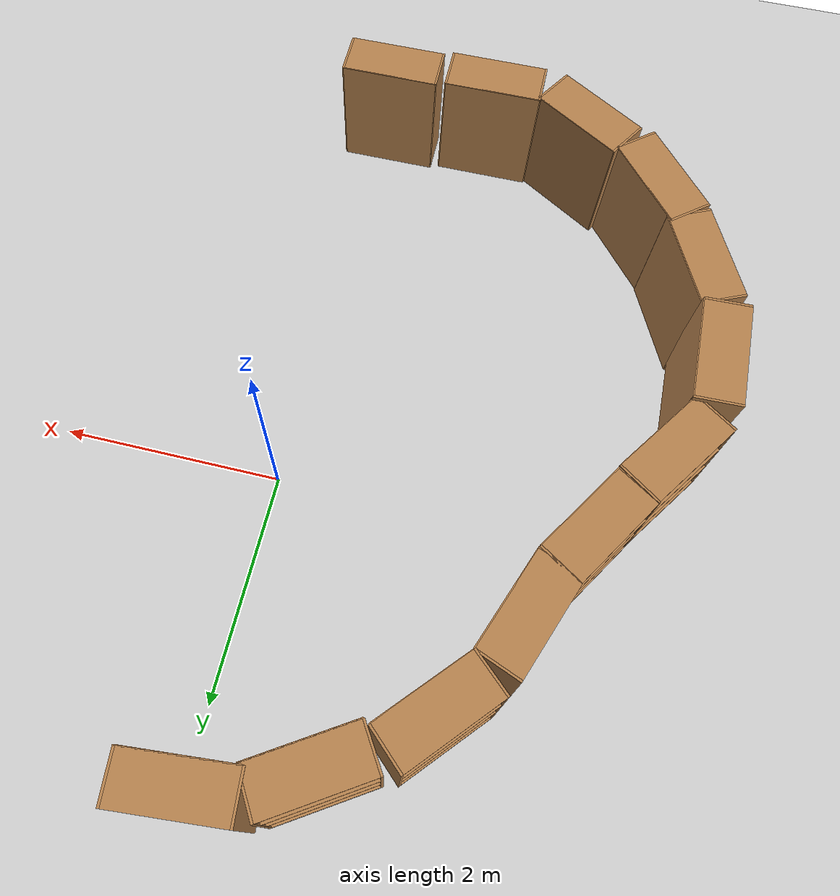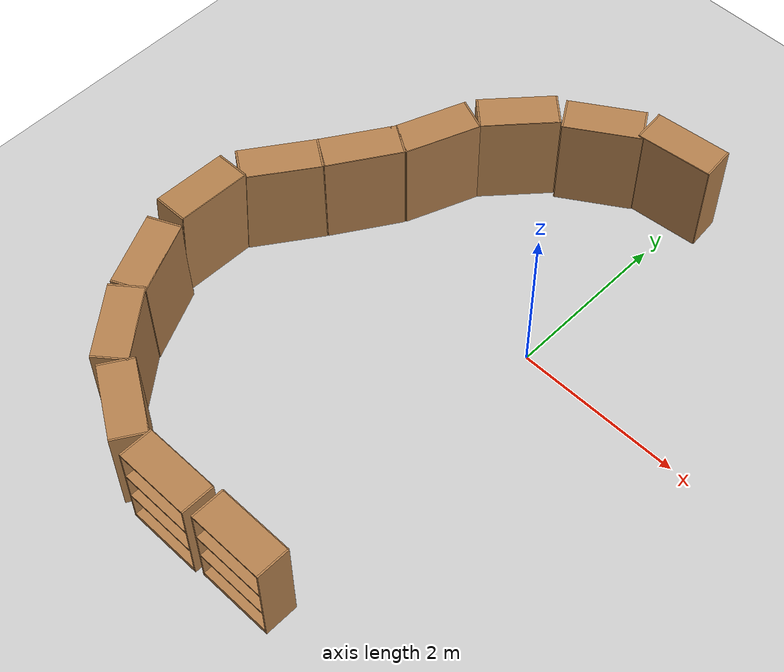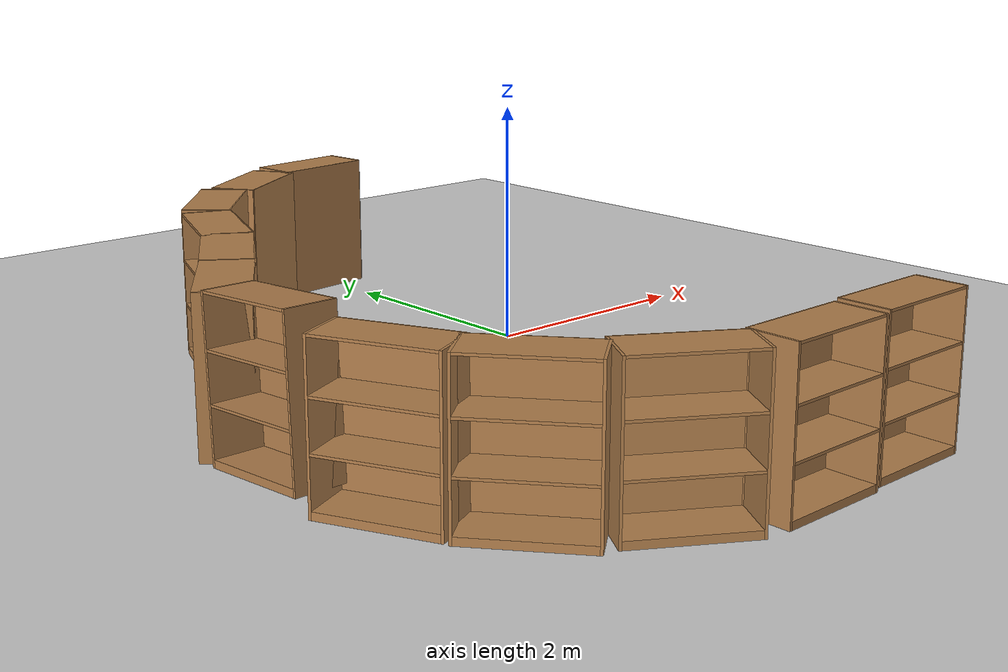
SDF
<sdf version="1.7">
 <world name="default">
  <model name="ground_plane">
   <static>1</static>
   <link name="link">
    <collision name="collision">
     <geometry><plane><normal>0 0 1</normal><size>100 100</size></plane></geometry>
     <surface>
      <contact><collide_bitmask>65535</collide_bitmask></contact>
      <friction><ode><mu>100</mu><mu2>50</mu2></ode></friction>
     </surface>
    </collision>
    <visual name="visual">
     <cast_shadows>0</cast_shadows>
     <geometry><plane><normal>0 0 1</normal><size>100 100</size></plane></geometry>
     <material>
      <script><uri>file://media/materials/scripts/gazebo.material</uri><name>Gazebo/Grey</name></script>
     </material>
    </visual>
   </link>
  </model>
  <model name="bookshelf">
   <static>1</static>
   <link name="link">
    <inertial><mass>1</mass></inertial>
    <collision name="back">
     <pose>0 0.005 0.6 0 -0 0</pose>
     <geometry><box><size>0.9 0.01 1.2</size></box></geometry>
    </collision>
    <visual name="visual1">
     <pose>0 0.005 0.6 0 -0 0</pose>
     <geometry><box><size>0.9 0.01 1.2</size></box></geometry>
     <material>
      <script><uri>file://media/materials/scripts/gazebo.material</uri><name>Gazebo/Wood</name></script>
     </material>
    </visual>
    <collision name="left_side">
     <pose>0.45 -0.195 0.6 0 -0 0</pose>
     <geometry><box><size>0.02 0.4 1.2</size></box></geometry>
    </collision>
    <visual name="visual2">
     <pose>0.45 -0.195 0.6 0 -0 0</pose>
     <geometry><box><size>0.02 0.4 1.2</size></box></geometry>
     <material>
      <script><uri>file://media/materials/scripts/gazebo.material</uri><name>Gazebo/Wood</name></script>
     </material>
    </visual>
    <collision name="right_side">
     <pose>-0.45 -0.195 0.6 0 -0 0</pose>
     <geometry><box><size>0.02 0.4 1.2</size></box></geometry>
    </collision>
    <visual name="visual3">
     <pose>-0.45 -0.195 0.6 0 -0 0</pose>
     <geometry><box><size>0.02 0.4 1.2</size></box></geometry>
     <material>
      <script><uri>file://media/materials/scripts/gazebo.material</uri><name>Gazebo/Wood</name></script>
     </material>
    </visual>
    <collision name="bottom">
     <pose>0 -0.195 0.03 0 -0 0</pose>
     <geometry><box><size>0.88 0.4 0.06</size></box></geometry>
    </collision>
    <visual name="visual4">
     <pose>0 -0.195 0.03 0 -0 0</pose>
     <geometry><box><size>0.88 0.4 0.06</size></box></geometry>
     <material>
      <script><uri>file://media/materials/scripts/gazebo.material</uri><name>Gazebo/Wood</name></script>
     </material>
    </visual>
    <collision name="top">
     <pose>0 -0.195 1.19 0 -0 0</pose>
     <geometry><box><size>0.88 0.4 0.02</size></box></geometry>
    </collision>
    <visual name="visual5">
     <pose>0 -0.195 1.19 0 -0 0</pose>
     <geometry><box><size>0.88 0.4 0.02</size></box></geometry>
     <material>
      <script><uri>file://media/materials/scripts/gazebo.material</uri><name>Gazebo/Wood</name></script>
     </material>
    </visual>
    <collision name="low_shelf">
     <pose>0 -0.195 0.43 0 -0 0</pose>
     <geometry><box><size>0.88 0.4 0.02</size></box></geometry>
    </collision>
    <visual name="visual6">
     <pose>0 -0.195 0.43 0 -0 0</pose>
     <geometry><box><size>0.88 0.4 0.02</size></box></geometry>
     <material>
      <script><uri>file://media/materials/scripts/gazebo.material</uri><name>Gazebo/Wood</name></script>
     </material>
    </visual>
    <collision name="high_shelf">
     <pose>0 -0.195 0.8 0 -0 0</pose>
     <geometry><box><size>0.88 0.4 0.02</size></box></geometry>
    </collision>
    <visual name="visual7">
     <pose>0 -0.195 0.8 0 -0 0</pose>
     <geometry><box><size>0.88 0.4 0.02</size></box></geometry>
     <material>
      <script><uri>file://media/materials/scripts/gazebo.material</uri><name>Gazebo/Wood</name></script>
     </material>
    </visual>
   </link>
   <pose>-3.24887 -1.54956 0.088565 -0.012294 -0.060689 -1.55302</pose>
  </model>
  <model name="bookshelf_0">
   <static>1</static>
   <link name="link">
    <inertial><mass>1</mass></inertial>
    <collision name="back">
     <pose>0 0.005 0.6 0 -0 0</pose>
     <geometry><box><size>0.9 0.01 1.2</size></box></geometry>
    </collision>
    <visual name="visual1">
     <pose>0 0.005 0.6 0 -0 0</pose>
     <geometry><box><size>0.9 0.01 1.2</size></box></geometry>
     <material>
      <script><uri>file://media/materials/scripts/gazebo.material</uri><name>Gazebo/Wood</name></script>
     </material>
    </visual>
    <collision name="left_side">
     <pose>0.45 -0.195 0.6 0 -0 0</pose>
     <geometry><box><size>0.02 0.4 1.2</size></box></geometry>
    </collision>
    <visual name="visual2">
     <pose>0.45 -0.195 0.6 0 -0 0</pose>
     <geometry><box><size>0.02 0.4 1.2</size></box></geometry>
     <material>
      <script><uri>file://media/materials/scripts/gazebo.material</uri><name>Gazebo/Wood</name></script>
     </material>
    </visual>
    <collision name="right_side">
     <pose>-0.45 -0.195 0.6 0 -0 0</pose>
     <geometry><box><size>0.02 0.4 1.2</size></box></geometry>
    </collision>
    <visual name="visual3">
     <pose>-0.45 -0.195 0.6 0 -0 0</pose>
     <geometry><box><size>0.02 0.4 1.2</size></box></geometry>
     <material>
      <script><uri>file://media/materials/scripts/gazebo.material</uri><name>Gazebo/Wood</name></script>
     </material>
    </visual>
    <collision name="bottom">
     <pose>0 -0.195 0.03 0 -0 0</pose>
     <geometry><box><size>0.88 0.4 0.06</size></box></geometry>
    </collision>
    <visual name="visual4">
     <pose>0 -0.195 0.03 0 -0 0</pose>
     <geometry><box><size>0.88 0.4 0.06</size></box></geometry>
     <material>
      <script><uri>file://media/materials/scripts/gazebo.material</uri><name>Gazebo/Wood</name></script>
     </material>
    </visual>
    <collision name="top">
     <pose>0 -0.195 1.19 0 -0 0</pose>
     <geometry><box><size>0.88 0.4 0.02</size></box></geometry>
    </collision>
    <visual name="visual5">
     <pose>0 -0.195 1.19 0 -0 0</pose>
     <geometry><box><size>0.88 0.4 0.02</size></box></geometry>
     <material>
      <script><uri>file://media/materials/scripts/gazebo.material</uri><name>Gazebo/Wood</name></script>
     </material>
    </visual>
    <collision name="low_shelf">
     <pose>0 -0.195 0.43 0 -0 0</pose>
     <geometry><box><size>0.88 0.4 0.02</size></box></geometry>
    </collision>
    <visual name="visual6">
     <pose>0 -0.195 0.43 0 -0 0</pose>
     <geometry><box><size>0.88 0.4 0.02</size></box></geometry>
     <material>
      <script><uri>file://media/materials/scripts/gazebo.material</uri><name>Gazebo/Wood</name></script>
     </material>
    </visual>
    <collision name="high_shelf">
     <pose>0 -0.195 0.8 0 -0 0</pose>
     <geometry><box><size>0.88 0.4 0.02</size></box></geometry>
    </collision>
    <visual name="visual7">
     <pose>0 -0.195 0.8 0 -0 0</pose>
     <geometry><box><size>0.88 0.4 0.02</size></box></geometry>
     <material>
      <script><uri>file://media/materials/scripts/gazebo.material</uri><name>Gazebo/Wood</name></script>
     </material>
    </visual>
   </link>
   <pose>-2.61978 -3.08808 0 0 0 -0.896017</pose>
  </model>
  <model name="bookshelf_1">
   <static>1</static>
   <link name="link">
    <inertial><mass>1</mass></inertial>
    <collision name="back">
     <pose>0 0.005 0.6 0 -0 0</pose>
     <geometry><box><size>0.9 0.01 1.2</size></box></geometry>
    </collision>
    <visual name="visual1">
     <pose>0 0.005 0.6 0 -0 0</pose>
     <geometry><box><size>0.9 0.01 1.2</size></box></geometry>
     <material>
      <script><uri>file://media/materials/scripts/gazebo.material</uri><name>Gazebo/Wood</name></script>
     </material>
    </visual>
    <collision name="left_side">
     <pose>0.45 -0.195 0.6 0 -0 0</pose>
     <geometry><box><size>0.02 0.4 1.2</size></box></geometry>
    </collision>
    <visual name="visual2">
     <pose>0.45 -0.195 0.6 0 -0 0</pose>
     <geometry><box><size>0.02 0.4 1.2</size></box></geometry>
     <material>
      <script><uri>file://media/materials/scripts/gazebo.material</uri><name>Gazebo/Wood</name></script>
     </material>
    </visual>
    <collision name="right_side">
     <pose>-0.45 -0.195 0.6 0 -0 0</pose>
     <geometry><box><size>0.02 0.4 1.2</size></box></geometry>
    </collision>
    <visual name="visual3">
     <pose>-0.45 -0.195 0.6 0 -0 0</pose>
     <geometry><box><size>0.02 0.4 1.2</size></box></geometry>
     <material>
      <script><uri>file://media/materials/scripts/gazebo.material</uri><name>Gazebo/Wood</name></script>
     </material>
    </visual>
    <collision name="bottom">
     <pose>0 -0.195 0.03 0 -0 0</pose>
     <geometry><box><size>0.88 0.4 0.06</size></box></geometry>
    </collision>
    <visual name="visual4">
     <pose>0 -0.195 0.03 0 -0 0</pose>
     <geometry><box><size>0.88 0.4 0.06</size></box></geometry>
     <material>
      <script><uri>file://media/materials/scripts/gazebo.material</uri><name>Gazebo/Wood</name></script>
     </material>
    </visual>
    <collision name="top">
     <pose>0 -0.195 1.19 0 -0 0</pose>
     <geometry><box><size>0.88 0.4 0.02</size></box></geometry>
    </collision>
    <visual name="visual5">
     <pose>0 -0.195 1.19 0 -0 0</pose>
     <geometry><box><size>0.88 0.4 0.02</size></box></geometry>
     <material>
      <script><uri>file://media/materials/scripts/gazebo.material</uri><name>Gazebo/Wood</name></script>
     </material>
    </visual>
    <collision name="low_shelf">
     <pose>0 -0.195 0.43 0 -0 0</pose>
     <geometry><box><size>0.88 0.4 0.02</size></box></geometry>
    </collision>
    <visual name="visual6">
     <pose>0 -0.195 0.43 0 -0 0</pose>
     <geometry><box><size>0.88 0.4 0.02</size></box></geometry>
     <material>
      <script><uri>file://media/materials/scripts/gazebo.material</uri><name>Gazebo/Wood</name></script>
     </material>
    </visual>
    <collision name="high_shelf">
     <pose>0 -0.195 0.8 0 -0 0</pose>
     <geometry><box><size>0.88 0.4 0.02</size></box></geometry>
    </collision>
    <visual name="visual7">
     <pose>0 -0.195 0.8 0 -0 0</pose>
     <geometry><box><size>0.88 0.4 0.02</size></box></geometry>
     <material>
      <script><uri>file://media/materials/scripts/gazebo.material</uri><name>Gazebo/Wood</name></script>
     </material>
    </visual>
   </link>
   <pose>-1.92809 -3.61462 0 0 0 -0.558272</pose>
  </model>
  <model name="bookshelf_2">
   <static>1</static>
   <link name="link">
    <inertial><mass>1</mass></inertial>
    <collision name="back">
     <pose>0 0.005 0.6 0 -0 0</pose>
     <geometry><box><size>0.9 0.01 1.2</size></box></geometry>
    </collision>
    <visual name="visual1">
     <pose>0 0.005 0.6 0 -0 0</pose>
     <geometry><box><size>0.9 0.01 1.2</size></box></geometry>
     <material>
      <script><uri>file://media/materials/scripts/gazebo.material</uri><name>Gazebo/Wood</name></script>
     </material>
    </visual>
    <collision name="left_side">
     <pose>0.45 -0.195 0.6 0 -0 0</pose>
     <geometry><box><size>0.02 0.4 1.2</size></box></geometry>
    </collision>
    <visual name="visual2">
     <pose>0.45 -0.195 0.6 0 -0 0</pose>
     <geometry><box><size>0.02 0.4 1.2</size></box></geometry>
     <material>
      <script><uri>file://media/materials/scripts/gazebo.material</uri><name>Gazebo/Wood</name></script>
     </material>
    </visual>
    <collision name="right_side">
     <pose>-0.45 -0.195 0.6 0 -0 0</pose>
     <geometry><box><size>0.02 0.4 1.2</size></box></geometry>
    </collision>
    <visual name="visual3">
     <pose>-0.45 -0.195 0.6 0 -0 0</pose>
     <geometry><box><size>0.02 0.4 1.2</size></box></geometry>
     <material>
      <script><uri>file://media/materials/scripts/gazebo.material</uri><name>Gazebo/Wood</name></script>
     </material>
    </visual>
    <collision name="bottom">
     <pose>0 -0.195 0.03 0 -0 0</pose>
     <geometry><box><size>0.88 0.4 0.06</size></box></geometry>
    </collision>
    <visual name="visual4">
     <pose>0 -0.195 0.03 0 -0 0</pose>
     <geometry><box><size>0.88 0.4 0.06</size></box></geometry>
     <material>
      <script><uri>file://media/materials/scripts/gazebo.material</uri><name>Gazebo/Wood</name></script>
     </material>
    </visual>
    <collision name="top">
     <pose>0 -0.195 1.19 0 -0 0</pose>
     <geometry><box><size>0.88 0.4 0.02</size></box></geometry>
    </collision>
    <visual name="visual5">
     <pose>0 -0.195 1.19 0 -0 0</pose>
     <geometry><box><size>0.88 0.4 0.02</size></box></geometry>
     <material>
      <script><uri>file://media/materials/scripts/gazebo.material</uri><name>Gazebo/Wood</name></script>
     </material>
    </visual>
    <collision name="low_shelf">
     <pose>0 -0.195 0.43 0 -0 0</pose>
     <geometry><box><size>0.88 0.4 0.02</size></box></geometry>
    </collision>
    <visual name="visual6">
     <pose>0 -0.195 0.43 0 -0 0</pose>
     <geometry><box><size>0.88 0.4 0.02</size></box></geometry>
     <material>
      <script><uri>file://media/materials/scripts/gazebo.material</uri><name>Gazebo/Wood</name></script>
     </material>
    </visual>
    <collision name="high_shelf">
     <pose>0 -0.195 0.8 0 -0 0</pose>
     <geometry><box><size>0.88 0.4 0.02</size></box></geometry>
    </collision>
    <visual name="visual7">
     <pose>0 -0.195 0.8 0 -0 0</pose>
     <geometry><box><size>0.88 0.4 0.02</size></box></geometry>
     <material>
      <script><uri>file://media/materials/scripts/gazebo.material</uri><name>Gazebo/Wood</name></script>
     </material>
    </visual>
   </link>
   <pose>-1.10045 -3.82042 0 0 -0 0</pose>
  </model>
  <model name="bookshelf_3">
   <static>1</static>
   <link name="link">
    <inertial><mass>1</mass></inertial>
    <collision name="back">
     <pose>0 0.005 0.6 0 -0 0</pose>
     <geometry><box><size>0.9 0.01 1.2</size></box></geometry>
    </collision>
    <visual name="visual1">
     <pose>0 0.005 0.6 0 -0 0</pose>
     <geometry><box><size>0.9 0.01 1.2</size></box></geometry>
     <material>
      <script><uri>file://media/materials/scripts/gazebo.material</uri><name>Gazebo/Wood</name></script>
     </material>
    </visual>
    <collision name="left_side">
     <pose>0.45 -0.195 0.6 0 -0 0</pose>
     <geometry><box><size>0.02 0.4 1.2</size></box></geometry>
    </collision>
    <visual name="visual2">
     <pose>0.45 -0.195 0.6 0 -0 0</pose>
     <geometry><box><size>0.02 0.4 1.2</size></box></geometry>
     <material>
      <script><uri>file://media/materials/scripts/gazebo.material</uri><name>Gazebo/Wood</name></script>
     </material>
    </visual>
    <collision name="right_side">
     <pose>-0.45 -0.195 0.6 0 -0 0</pose>
     <geometry><box><size>0.02 0.4 1.2</size></box></geometry>
    </collision>
    <visual name="visual3">
     <pose>-0.45 -0.195 0.6 0 -0 0</pose>
     <geometry><box><size>0.02 0.4 1.2</size></box></geometry>
     <material>
      <script><uri>file://media/materials/scripts/gazebo.material</uri><name>Gazebo/Wood</name></script>
     </material>
    </visual>
    <collision name="bottom">
     <pose>0 -0.195 0.03 0 -0 0</pose>
     <geometry><box><size>0.88 0.4 0.06</size></box></geometry>
    </collision>
    <visual name="visual4">
     <pose>0 -0.195 0.03 0 -0 0</pose>
     <geometry><box><size>0.88 0.4 0.06</size></box></geometry>
     <material>
      <script><uri>file://media/materials/scripts/gazebo.material</uri><name>Gazebo/Wood</name></script>
     </material>
    </visual>
    <collision name="top">
     <pose>0 -0.195 1.19 0 -0 0</pose>
     <geometry><box><size>0.88 0.4 0.02</size></box></geometry>
    </collision>
    <visual name="visual5">
     <pose>0 -0.195 1.19 0 -0 0</pose>
     <geometry><box><size>0.88 0.4 0.02</size></box></geometry>
     <material>
      <script><uri>file://media/materials/scripts/gazebo.material</uri><name>Gazebo/Wood</name></script>
     </material>
    </visual>
    <collision name="low_shelf">
     <pose>0 -0.195 0.43 0 -0 0</pose>
     <geometry><box><size>0.88 0.4 0.02</size></box></geometry>
    </collision>
    <visual name="visual6">
     <pose>0 -0.195 0.43 0 -0 0</pose>
     <geometry><box><size>0.88 0.4 0.02</size></box></geometry>
     <material>
      <script><uri>file://media/materials/scripts/gazebo.material</uri><name>Gazebo/Wood</name></script>
     </material>
    </visual>
    <collision name="high_shelf">
     <pose>0 -0.195 0.8 0 -0 0</pose>
     <geometry><box><size>0.88 0.4 0.02</size></box></geometry>
    </collision>
    <visual name="visual7">
     <pose>0 -0.195 0.8 0 -0 0</pose>
     <geometry><box><size>0.88 0.4 0.02</size></box></geometry>
     <material>
      <script><uri>file://media/materials/scripts/gazebo.material</uri><name>Gazebo/Wood</name></script>
     </material>
    </visual>
   </link>
   <pose>-0.108426 -3.78195 0 0 -0 0</pose>
  </model>
  <model name="bookshelf_14">
   <static>1</static>
   <link name="link">
    <inertial><mass>1</mass></inertial>
    <collision name="back">
     <pose>0 0.005 0.6 0 -0 0</pose>
     <geometry><box><size>0.9 0.01 1.2</size></box></geometry>
    </collision>
    <visual name="visual1">
     <pose>0 0.005 0.6 0 -0 0</pose>
     <geometry><box><size>0.9 0.01 1.2</size></box></geometry>
     <material>
      <script><uri>file://media/materials/scripts/gazebo.material</uri><name>Gazebo/Wood</name></script>
     </material>
    </visual>
    <collision name="left_side">
     <pose>0.45 -0.195 0.6 0 -0 0</pose>
     <geometry><box><size>0.02 0.4 1.2</size></box></geometry>
    </collision>
    <visual name="visual2">
     <pose>0.45 -0.195 0.6 0 -0 0</pose>
     <geometry><box><size>0.02 0.4 1.2</size></box></geometry>
     <material>
      <script><uri>file://media/materials/scripts/gazebo.material</uri><name>Gazebo/Wood</name></script>
     </material>
    </visual>
    <collision name="right_side">
     <pose>-0.45 -0.195 0.6 0 -0 0</pose>
     <geometry><box><size>0.02 0.4 1.2</size></box></geometry>
    </collision>
    <visual name="visual3">
     <pose>-0.45 -0.195 0.6 0 -0 0</pose>
     <geometry><box><size>0.02 0.4 1.2</size></box></geometry>
     <material>
      <script><uri>file://media/materials/scripts/gazebo.material</uri><name>Gazebo/Wood</name></script>
     </material>
    </visual>
    <collision name="bottom">
     <pose>0 -0.195 0.03 0 -0 0</pose>
     <geometry><box><size>0.88 0.4 0.06</size></box></geometry>
    </collision>
    <visual name="visual4">
     <pose>0 -0.195 0.03 0 -0 0</pose>
     <geometry><box><size>0.88 0.4 0.06</size></box></geometry>
     <material>
      <script><uri>file://media/materials/scripts/gazebo.material</uri><name>Gazebo/Wood</name></script>
     </material>
    </visual>
    <collision name="top">
     <pose>0 -0.195 1.19 0 -0 0</pose>
     <geometry><box><size>0.88 0.4 0.02</size></box></geometry>
    </collision>
    <visual name="visual5">
     <pose>0 -0.195 1.19 0 -0 0</pose>
     <geometry><box><size>0.88 0.4 0.02</size></box></geometry>
     <material>
      <script><uri>file://media/materials/scripts/gazebo.material</uri><name>Gazebo/Wood</name></script>
     </material>
    </visual>
    <collision name="low_shelf">
     <pose>0 -0.195 0.43 0 -0 0</pose>
     <geometry><box><size>0.88 0.4 0.02</size></box></geometry>
    </collision>
    <visual name="visual6">
     <pose>0 -0.195 0.43 0 -0 0</pose>
     <geometry><box><size>0.88 0.4 0.02</size></box></geometry>
     <material>
      <script><uri>file://media/materials/scripts/gazebo.material</uri><name>Gazebo/Wood</name></script>
     </material>
    </visual>
    <collision name="high_shelf">
     <pose>0 -0.195 0.8 0 -0 0</pose>
     <geometry><box><size>0.88 0.4 0.02</size></box></geometry>
    </collision>
    <visual name="visual7">
     <pose>0 -0.195 0.8 0 -0 0</pose>
     <geometry><box><size>0.88 0.4 0.02</size></box></geometry>
     <material>
      <script><uri>file://media/materials/scripts/gazebo.material</uri><name>Gazebo/Wood</name></script>
     </material>
    </visual>
   </link>
   <pose>-3.02397 -0.696625 0.006845 0 0 -2.18123</pose>
  </model>
  <model name="bookshelf_15">
   <static>1</static>
   <link name="link">
    <inertial><mass>1</mass></inertial>
    <collision name="back">
     <pose>0 0.005 0.6 0 -0 0</pose>
     <geometry><box><size>0.9 0.01 1.2</size></box></geometry>
    </collision>
    <visual name="visual1">
     <pose>0 0.005 0.6 0 -0 0</pose>
     <geometry><box><size>0.9 0.01 1.2</size></box></geometry>
     <material>
      <script><uri>file://media/materials/scripts/gazebo.material</uri><name>Gazebo/Wood</name></script>
     </material>
    </visual>
    <collision name="left_side">
     <pose>0.45 -0.195 0.6 0 -0 0</pose>
     <geometry><box><size>0.02 0.4 1.2</size></box></geometry>
    </collision>
    <visual name="visual2">
     <pose>0.45 -0.195 0.6 0 -0 0</pose>
     <geometry><box><size>0.02 0.4 1.2</size></box></geometry>
     <material>
      <script><uri>file://media/materials/scripts/gazebo.material</uri><name>Gazebo/Wood</name></script>
     </material>
    </visual>
    <collision name="right_side">
     <pose>-0.45 -0.195 0.6 0 -0 0</pose>
     <geometry><box><size>0.02 0.4 1.2</size></box></geometry>
    </collision>
    <visual name="visual3">
     <pose>-0.45 -0.195 0.6 0 -0 0</pose>
     <geometry><box><size>0.02 0.4 1.2</size></box></geometry>
     <material>
      <script><uri>file://media/materials/scripts/gazebo.material</uri><name>Gazebo/Wood</name></script>
     </material>
    </visual>
    <collision name="bottom">
     <pose>0 -0.195 0.03 0 -0 0</pose>
     <geometry><box><size>0.88 0.4 0.06</size></box></geometry>
    </collision>
    <visual name="visual4">
     <pose>0 -0.195 0.03 0 -0 0</pose>
     <geometry><box><size>0.88 0.4 0.06</size></box></geometry>
     <material>
      <script><uri>file://media/materials/scripts/gazebo.material</uri><name>Gazebo/Wood</name></script>
     </material>
    </visual>
    <collision name="top">
     <pose>0 -0.195 1.19 0 -0 0</pose>
     <geometry><box><size>0.88 0.4 0.02</size></box></geometry>
    </collision>
    <visual name="visual5">
     <pose>0 -0.195 1.19 0 -0 0</pose>
     <geometry><box><size>0.88 0.4 0.02</size></box></geometry>
     <material>
      <script><uri>file://media/materials/scripts/gazebo.material</uri><name>Gazebo/Wood</name></script>
     </material>
    </visual>
    <collision name="low_shelf">
     <pose>0 -0.195 0.43 0 -0 0</pose>
     <geometry><box><size>0.88 0.4 0.02</size></box></geometry>
    </collision>
    <visual name="visual6">
     <pose>0 -0.195 0.43 0 -0 0</pose>
     <geometry><box><size>0.88 0.4 0.02</size></box></geometry>
     <material>
      <script><uri>file://media/materials/scripts/gazebo.material</uri><name>Gazebo/Wood</name></script>
     </material>
    </visual>
    <collision name="high_shelf">
     <pose>0 -0.195 0.8 0 -0 0</pose>
     <geometry><box><size>0.88 0.4 0.02</size></box></geometry>
    </collision>
    <visual name="visual7">
     <pose>0 -0.195 0.8 0 -0 0</pose>
     <geometry><box><size>0.88 0.4 0.02</size></box></geometry>
     <material>
      <script><uri>file://media/materials/scripts/gazebo.material</uri><name>Gazebo/Wood</name></script>
     </material>
    </visual>
   </link>
   <pose>-2.10526 0.874817 0 0 0 -1.94079</pose>
  </model>
  <model name="bookshelf_16">
   <static>1</static>
   <link name="link">
    <inertial><mass>1</mass></inertial>
    <collision name="back">
     <pose>0 0.005 0.6 0 -0 0</pose>
     <geometry><box><size>0.9 0.01 1.2</size></box></geometry>
    </collision>
    <visual name="visual1">
     <pose>0 0.005 0.6 0 -0 0</pose>
     <geometry><box><size>0.9 0.01 1.2</size></box></geometry>
     <material>
      <script><uri>file://media/materials/scripts/gazebo.material</uri><name>Gazebo/Wood</name></script>
     </material>
    </visual>
    <collision name="left_side">
     <pose>0.45 -0.195 0.6 0 -0 0</pose>
     <geometry><box><size>0.02 0.4 1.2</size></box></geometry>
    </collision>
    <visual name="visual2">
     <pose>0.45 -0.195 0.6 0 -0 0</pose>
     <geometry><box><size>0.02 0.4 1.2</size></box></geometry>
     <material>
      <script><uri>file://media/materials/scripts/gazebo.material</uri><name>Gazebo/Wood</name></script>
     </material>
    </visual>
    <collision name="right_side">
     <pose>-0.45 -0.195 0.6 0 -0 0</pose>
     <geometry><box><size>0.02 0.4 1.2</size></box></geometry>
    </collision>
    <visual name="visual3">
     <pose>-0.45 -0.195 0.6 0 -0 0</pose>
     <geometry><box><size>0.02 0.4 1.2</size></box></geometry>
     <material>
      <script><uri>file://media/materials/scripts/gazebo.material</uri><name>Gazebo/Wood</name></script>
     </material>
    </visual>
    <collision name="bottom">
     <pose>0 -0.195 0.03 0 -0 0</pose>
     <geometry><box><size>0.88 0.4 0.06</size></box></geometry>
    </collision>
    <visual name="visual4">
     <pose>0 -0.195 0.03 0 -0 0</pose>
     <geometry><box><size>0.88 0.4 0.06</size></box></geometry>
     <material>
      <script><uri>file://media/materials/scripts/gazebo.material</uri><name>Gazebo/Wood</name></script>
     </material>
    </visual>
    <collision name="top">
     <pose>0 -0.195 1.19 0 -0 0</pose>
     <geometry><box><size>0.88 0.4 0.02</size></box></geometry>
    </collision>
    <visual name="visual5">
     <pose>0 -0.195 1.19 0 -0 0</pose>
     <geometry><box><size>0.88 0.4 0.02</size></box></geometry>
     <material>
      <script><uri>file://media/materials/scripts/gazebo.material</uri><name>Gazebo/Wood</name></script>
     </material>
    </visual>
    <collision name="low_shelf">
     <pose>0 -0.195 0.43 0 -0 0</pose>
     <geometry><box><size>0.88 0.4 0.02</size></box></geometry>
    </collision>
    <visual name="visual6">
     <pose>0 -0.195 0.43 0 -0 0</pose>
     <geometry><box><size>0.88 0.4 0.02</size></box></geometry>
     <material>
      <script><uri>file://media/materials/scripts/gazebo.material</uri><name>Gazebo/Wood</name></script>
     </material>
    </visual>
    <collision name="high_shelf">
     <pose>0 -0.195 0.8 0 -0 0</pose>
     <geometry><box><size>0.88 0.4 0.02</size></box></geometry>
    </collision>
    <visual name="visual7">
     <pose>0 -0.195 0.8 0 -0 0</pose>
     <geometry><box><size>0.88 0.4 0.02</size></box></geometry>
     <material>
      <script><uri>file://media/materials/scripts/gazebo.material</uri><name>Gazebo/Wood</name></script>
     </material>
    </visual>
   </link>
   <pose>-2.51946 0.064998 0 0 0 -2.14131</pose>
  </model>
  <model name="bookshelf_0_clone">
   <static>1</static>
   <link name="link">
    <inertial><mass>1</mass></inertial>
    <collision name="back">
     <pose>0 0.005 0.6 0 -0 0</pose>
     <geometry><box><size>0.9 0.01 1.2</size></box></geometry>
    </collision>
    <visual name="visual1">
     <pose>0 0.005 0.6 0 -0 0</pose>
     <geometry><box><size>0.9 0.01 1.2</size></box></geometry>
     <material>
      <script><uri>file://media/materials/scripts/gazebo.material</uri><name>Gazebo/Wood</name></script>
     </material>
    </visual>
    <collision name="left_side">
     <pose>0.45 -0.195 0.6 0 -0 0</pose>
     <geometry><box><size>0.02 0.4 1.2</size></box></geometry>
    </collision>
    <visual name="visual2">
     <pose>0.45 -0.195 0.6 0 -0 0</pose>
     <geometry><box><size>0.02 0.4 1.2</size></box></geometry>
     <material>
      <script><uri>file://media/materials/scripts/gazebo.material</uri><name>Gazebo/Wood</name></script>
     </material>
    </visual>
    <collision name="right_side">
     <pose>-0.45 -0.195 0.6 0 -0 0</pose>
     <geometry><box><size>0.02 0.4 1.2</size></box></geometry>
    </collision>
    <visual name="visual3">
     <pose>-0.45 -0.195 0.6 0 -0 0</pose>
     <geometry><box><size>0.02 0.4 1.2</size></box></geometry>
     <material>
      <script><uri>file://media/materials/scripts/gazebo.material</uri><name>Gazebo/Wood</name></script>
     </material>
    </visual>
    <collision name="bottom">
     <pose>0 -0.195 0.03 0 -0 0</pose>
     <geometry><box><size>0.88 0.4 0.06</size></box></geometry>
    </collision>
    <visual name="visual4">
     <pose>0 -0.195 0.03 0 -0 0</pose>
     <geometry><box><size>0.88 0.4 0.06</size></box></geometry>
     <material>
      <script><uri>file://media/materials/scripts/gazebo.material</uri><name>Gazebo/Wood</name></script>
     </material>
    </visual>
    <collision name="top">
     <pose>0 -0.195 1.19 0 -0 0</pose>
     <geometry><box><size>0.88 0.4 0.02</size></box></geometry>
    </collision>
    <visual name="visual5">
     <pose>0 -0.195 1.19 0 -0 0</pose>
     <geometry><box><size>0.88 0.4 0.02</size></box></geometry>
     <material>
      <script><uri>file://media/materials/scripts/gazebo.material</uri><name>Gazebo/Wood</name></script>
     </material>
    </visual>
    <collision name="low_shelf">
     <pose>0 -0.195 0.43 0 -0 0</pose>
     <geometry><box><size>0.88 0.4 0.02</size></box></geometry>
    </collision>
    <visual name="visual6">
     <pose>0 -0.195 0.43 0 -0 0</pose>
     <geometry><box><size>0.88 0.4 0.02</size></box></geometry>
     <material>
      <script><uri>file://media/materials/scripts/gazebo.material</uri><name>Gazebo/Wood</name></script>
     </material>
    </visual>
    <collision name="high_shelf">
     <pose>0 -0.195 0.8 0 -0 0</pose>
     <geometry><box><size>0.88 0.4 0.02</size></box></geometry>
    </collision>
    <visual name="visual7">
     <pose>0 -0.195 0.8 0 -0 0</pose>
     <geometry><box><size>0.88 0.4 0.02</size></box></geometry>
     <material>
      <script><uri>file://media/materials/scripts/gazebo.material</uri><name>Gazebo/Wood</name></script>
     </material>
    </visual>
   </link>
   <pose>-3.05376 -2.35784 0 0 0 -1.14034</pose>
  </model>
  <model name="bookshelf_0_clone_0">
   <static>1</static>
   <link name="link">
    <inertial><mass>1</mass></inertial>
    <collision name="back">
     <pose>0 0.005 0.6 0 -0 0</pose>
     <geometry><box><size>0.9 0.01 1.2</size></box></geometry>
    </collision>
    <visual name="visual1">
     <pose>0 0.005 0.6 0 -0 0</pose>
     <geometry><box><size>0.9 0.01 1.2</size></box></geometry>
     <material>
      <script><uri>file://media/materials/scripts/gazebo.material</uri><name>Gazebo/Wood</name></script>
     </material>
    </visual>
    <collision name="left_side">
     <pose>0.45 -0.195 0.6 0 -0 0</pose>
     <geometry><box><size>0.02 0.4 1.2</size></box></geometry>
    </collision>
    <visual name="visual2">
     <pose>0.45 -0.195 0.6 0 -0 0</pose>
     <geometry><box><size>0.02 0.4 1.2</size></box></geometry>
     <material>
      <script><uri>file://media/materials/scripts/gazebo.material</uri><name>Gazebo/Wood</name></script>
     </material>
    </visual>
    <collision name="right_side">
     <pose>-0.45 -0.195 0.6 0 -0 0</pose>
     <geometry><box><size>0.02 0.4 1.2</size></box></geometry>
    </collision>
    <visual name="visual3">
     <pose>-0.45 -0.195 0.6 0 -0 0</pose>
     <geometry><box><size>0.02 0.4 1.2</size></box></geometry>
     <material>
      <script><uri>file://media/materials/scripts/gazebo.material</uri><name>Gazebo/Wood</name></script>
     </material>
    </visual>
    <collision name="bottom">
     <pose>0 -0.195 0.03 0 -0 0</pose>
     <geometry><box><size>0.88 0.4 0.06</size></box></geometry>
    </collision>
    <visual name="visual4">
     <pose>0 -0.195 0.03 0 -0 0</pose>
     <geometry><box><size>0.88 0.4 0.06</size></box></geometry>
     <material>
      <script><uri>file://media/materials/scripts/gazebo.material</uri><name>Gazebo/Wood</name></script>
     </material>
    </visual>
    <collision name="top">
     <pose>0 -0.195 1.19 0 -0 0</pose>
     <geometry><box><size>0.88 0.4 0.02</size></box></geometry>
    </collision>
    <visual name="visual5">
     <pose>0 -0.195 1.19 0 -0 0</pose>
     <geometry><box><size>0.88 0.4 0.02</size></box></geometry>
     <material>
      <script><uri>file://media/materials/scripts/gazebo.material</uri><name>Gazebo/Wood</name></script>
     </material>
    </visual>
    <collision name="low_shelf">
     <pose>0 -0.195 0.43 0 -0 0</pose>
     <geometry><box><size>0.88 0.4 0.02</size></box></geometry>
    </collision>
    <visual name="visual6">
     <pose>0 -0.195 0.43 0 -0 0</pose>
     <geometry><box><size>0.88 0.4 0.02</size></box></geometry>
     <material>
      <script><uri>file://media/materials/scripts/gazebo.material</uri><name>Gazebo/Wood</name></script>
     </material>
    </visual>
    <collision name="high_shelf">
     <pose>0 -0.195 0.8 0 -0 0</pose>
     <geometry><box><size>0.88 0.4 0.02</size></box></geometry>
    </collision>
    <visual name="visual7">
     <pose>0 -0.195 0.8 0 -0 0</pose>
     <geometry><box><size>0.88 0.4 0.02</size></box></geometry>
     <material>
      <script><uri>file://media/materials/scripts/gazebo.material</uri><name>Gazebo/Wood</name></script>
     </material>
    </visual>
   </link>
   <pose>-1.64576 1.62825 0 0 0 -2.3062</pose>
  </model>
  <model name="bookshelf_0_clone_1">
   <static>1</static>
   <link name="link">
    <inertial><mass>1</mass></inertial>
    <collision name="back">
     <pose>0 0.005 0.6 0 -0 0</pose>
     <geometry><box><size>0.9 0.01 1.2</size></box></geometry>
    </collision>
    <visual name="visual1">
     <pose>0 0.005 0.6 0 -0 0</pose>
     <geometry><box><size>0.9 0.01 1.2</size></box></geometry>
     <material>
      <script><uri>file://media/materials/scripts/gazebo.material</uri><name>Gazebo/Wood</name></script>
     </material>
    </visual>
    <collision name="left_side">
     <pose>0.45 -0.195 0.6 0 -0 0</pose>
     <geometry><box><size>0.02 0.4 1.2</size></box></geometry>
    </collision>
    <visual name="visual2">
     <pose>0.45 -0.195 0.6 0 -0 0</pose>
     <geometry><box><size>0.02 0.4 1.2</size></box></geometry>
     <material>
      <script><uri>file://media/materials/scripts/gazebo.material</uri><name>Gazebo/Wood</name></script>
     </material>
    </visual>
    <collision name="right_side">
     <pose>-0.45 -0.195 0.6 0 -0 0</pose>
     <geometry><box><size>0.02 0.4 1.2</size></box></geometry>
    </collision>
    <visual name="visual3">
     <pose>-0.45 -0.195 0.6 0 -0 0</pose>
     <geometry><box><size>0.02 0.4 1.2</size></box></geometry>
     <material>
      <script><uri>file://media/materials/scripts/gazebo.material</uri><name>Gazebo/Wood</name></script>
     </material>
    </visual>
    <collision name="bottom">
     <pose>0 -0.195 0.03 0 -0 0</pose>
     <geometry><box><size>0.88 0.4 0.06</size></box></geometry>
    </collision>
    <visual name="visual4">
     <pose>0 -0.195 0.03 0 -0 0</pose>
     <geometry><box><size>0.88 0.4 0.06</size></box></geometry>
     <material>
      <script><uri>file://media/materials/scripts/gazebo.material</uri><name>Gazebo/Wood</name></script>
     </material>
    </visual>
    <collision name="top">
     <pose>0 -0.195 1.19 0 -0 0</pose>
     <geometry><box><size>0.88 0.4 0.02</size></box></geometry>
    </collision>
    <visual name="visual5">
     <pose>0 -0.195 1.19 0 -0 0</pose>
     <geometry><box><size>0.88 0.4 0.02</size></box></geometry>
     <material>
      <script><uri>file://media/materials/scripts/gazebo.material</uri><name>Gazebo/Wood</name></script>
     </material>
    </visual>
    <collision name="low_shelf">
     <pose>0 -0.195 0.43 0 -0 0</pose>
     <geometry><box><size>0.88 0.4 0.02</size></box></geometry>
    </collision>
    <visual name="visual6">
     <pose>0 -0.195 0.43 0 -0 0</pose>
     <geometry><box><size>0.88 0.4 0.02</size></box></geometry>
     <material>
      <script><uri>file://media/materials/scripts/gazebo.material</uri><name>Gazebo/Wood</name></script>
     </material>
    </visual>
    <collision name="high_shelf">
     <pose>0 -0.195 0.8 0 -0 0</pose>
     <geometry><box><size>0.88 0.4 0.02</size></box></geometry>
    </collision>
    <visual name="visual7">
     <pose>0 -0.195 0.8 0 -0 0</pose>
     <geometry><box><size>0.88 0.4 0.02</size></box></geometry>
     <material>
      <script><uri>file://media/materials/scripts/gazebo.material</uri><name>Gazebo/Wood</name></script>
     </material>
    </visual>
   </link>
   <pose>-0.916331 2.17272 -0.008079 0 0 -2.57529</pose>
  </model>
  <model name="bookshelf_0_clone_2">
   <static>1</static>
   <link name="link">
    <inertial><mass>1</mass></inertial>
    <collision name="back">
     <pose>0 0.005 0.6 0 -0 0</pose>
     <geometry><box><size>0.9 0.01 1.2</size></box></geometry>
    </collision>
    <visual name="visual1">
     <pose>0 0.005 0.6 0 -0 0</pose>
     <geometry><box><size>0.9 0.01 1.2</size></box></geometry>
     <material>
      <script><uri>file://media/materials/scripts/gazebo.material</uri><name>Gazebo/Wood</name></script>
     </material>
    </visual>
    <collision name="left_side">
     <pose>0.45 -0.195 0.6 0 -0 0</pose>
     <geometry><box><size>0.02 0.4 1.2</size></box></geometry>
    </collision>
    <visual name="visual2">
     <pose>0.45 -0.195 0.6 0 -0 0</pose>
     <geometry><box><size>0.02 0.4 1.2</size></box></geometry>
     <material>
      <script><uri>file://media/materials/scripts/gazebo.material</uri><name>Gazebo/Wood</name></script>
     </material>
    </visual>
    <collision name="right_side">
     <pose>-0.45 -0.195 0.6 0 -0 0</pose>
     <geometry><box><size>0.02 0.4 1.2</size></box></geometry>
    </collision>
    <visual name="visual3">
     <pose>-0.45 -0.195 0.6 0 -0 0</pose>
     <geometry><box><size>0.02 0.4 1.2</size></box></geometry>
     <material>
      <script><uri>file://media/materials/scripts/gazebo.material</uri><name>Gazebo/Wood</name></script>
     </material>
    </visual>
    <collision name="bottom">
     <pose>0 -0.195 0.03 0 -0 0</pose>
     <geometry><box><size>0.88 0.4 0.06</size></box></geometry>
    </collision>
    <visual name="visual4">
     <pose>0 -0.195 0.03 0 -0 0</pose>
     <geometry><box><size>0.88 0.4 0.06</size></box></geometry>
     <material>
      <script><uri>file://media/materials/scripts/gazebo.material</uri><name>Gazebo/Wood</name></script>
     </material>
    </visual>
    <collision name="top">
     <pose>0 -0.195 1.19 0 -0 0</pose>
     <geometry><box><size>0.88 0.4 0.02</size></box></geometry>
    </collision>
    <visual name="visual5">
     <pose>0 -0.195 1.19 0 -0 0</pose>
     <geometry><box><size>0.88 0.4 0.02</size></box></geometry>
     <material>
      <script><uri>file://media/materials/scripts/gazebo.material</uri><name>Gazebo/Wood</name></script>
     </material>
    </visual>
    <collision name="low_shelf">
     <pose>0 -0.195 0.43 0 -0 0</pose>
     <geometry><box><size>0.88 0.4 0.02</size></box></geometry>
    </collision>
    <visual name="visual6">
     <pose>0 -0.195 0.43 0 -0 0</pose>
     <geometry><box><size>0.88 0.4 0.02</size></box></geometry>
     <material>
      <script><uri>file://media/materials/scripts/gazebo.material</uri><name>Gazebo/Wood</name></script>
     </material>
    </visual>
    <collision name="high_shelf">
     <pose>0 -0.195 0.8 0 -0 0</pose>
     <geometry><box><size>0.88 0.4 0.02</size></box></geometry>
    </collision>
    <visual name="visual7">
     <pose>0 -0.195 0.8 0 -0 0</pose>
     <geometry><box><size>0.88 0.4 0.02</size></box></geometry>
     <material>
      <script><uri>file://media/materials/scripts/gazebo.material</uri><name>Gazebo/Wood</name></script>
     </material>
    </visual>
   </link>
   <pose>-0.143224 2.45976 0 0 0 -3.04821</pose>
  </model>
 </world>
</sdf>
